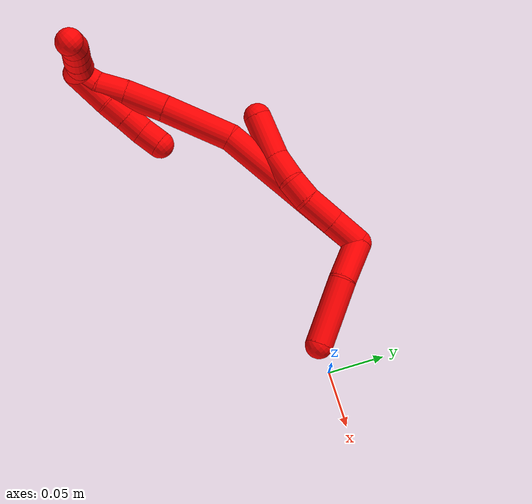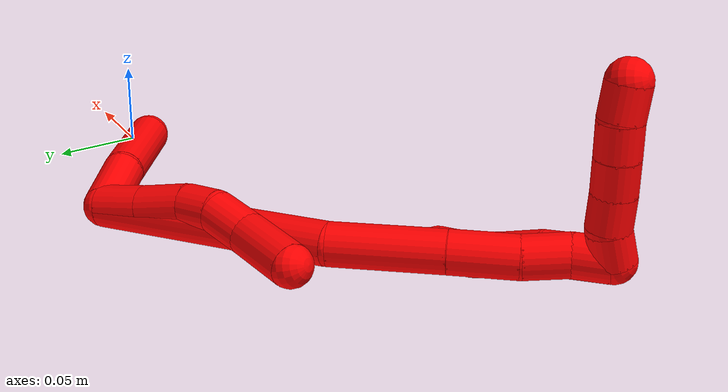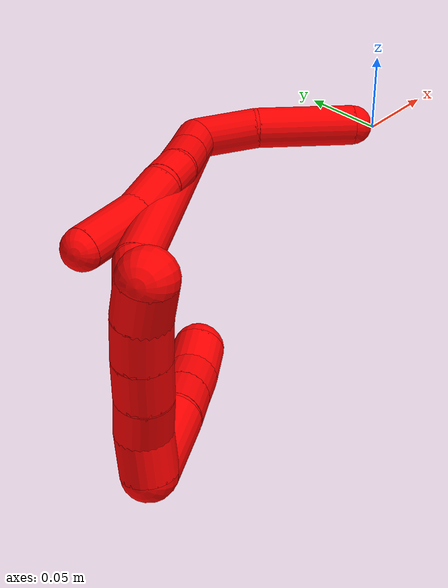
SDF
<sdf version="1.7">
 <world name="default">
  <model name="2">
   <static>0</static>
   <link name="2">
    <collision name="collision-cylinder-e_1_2_8">
     <pose>0.000711 -0.002378 0.01456 0.161924 0.048138 0.003907</pose>
     <geometry><cylinder><radius>0.0125</radius><length>0.029539</length></cylinder></geometry>
     <surface>
      <friction><ode><mu>1.16</mu><mu2>1.16</mu2><slip1>0</slip1><slip2>0</slip2></ode></friction>
      <contact><ode><kp>1e+06</kp><kd>1</kd><max_vel>0</max_vel><min_depth>0.001</min_depth></ode></contact>
     </surface>
    </collision>
    <visual name="visual-cylinder-e_1_2_8">
     <pose>0.000711 -0.002378 0.01456 0.161924 0.048138 0.003907</pose>
     <geometry><cylinder><radius>0.0125</radius><length>0.029539</length></cylinder></geometry>
     <material><ambient>1 0 0 1</ambient></material>
    </visual>
    <collision name="collision-cylinder-e_2_8_9">
     <pose>0.002696 -0.006528 0.044192 0.116995 0.083803 0.004911</pose>
     <geometry><cylinder><radius>0.0125</radius><length>0.03046</length></cylinder></geometry>
     <surface>
      <friction><ode><mu>1.16</mu><mu2>1.16</mu2><slip1>0</slip1><slip2>0</slip2></ode></friction>
      <contact><ode><kp>1e+06</kp><kd>1</kd><max_vel>0</max_vel><min_depth>0.001</min_depth></ode></contact>
     </surface>
    </collision>
    <visual name="visual-cylinder-e_2_8_9">
     <pose>0.002696 -0.006528 0.044192 0.116995 0.083803 0.004911</pose>
     <geometry><cylinder><radius>0.0125</radius><length>0.03046</length></cylinder></geometry>
     <material><ambient>1 0 0 1</ambient></material>
    </visual>
    <collision name="collision-cylinder-e_3_9_10">
     <pose>0.00231 -0.009905 0.069817 0.150943 -0.154341 -0.011694</pose>
     <geometry><cylinder><radius>0.0125</radius><length>0.021604</length></cylinder></geometry>
     <surface>
      <friction><ode><mu>1.16</mu><mu2>1.16</mu2><slip1>0</slip1><slip2>0</slip2></ode></friction>
      <contact><ode><kp>1e+06</kp><kd>1</kd><max_vel>0</max_vel><min_depth>0.001</min_depth></ode></contact>
     </surface>
    </collision>
    <visual name="visual-cylinder-e_3_9_10">
     <pose>0.00231 -0.009905 0.069817 0.150943 -0.154341 -0.011694</pose>
     <geometry><cylinder><radius>0.0125</radius><length>0.021604</length></cylinder></geometry>
     <material><ambient>1 0 0 1</ambient></material>
    </visual>
    <collision name="collision-cylinder-e_4_10_11">
     <pose>-0.004489 -0.01574 0.091919 0.351045 -0.395778 -0.071091</pose>
     <geometry><cylinder><radius>0.0125</radius><length>0.026662</length></cylinder></geometry>
     <surface>
      <friction><ode><mu>1.16</mu><mu2>1.16</mu2><slip1>0</slip1><slip2>0</slip2></ode></friction>
      <contact><ode><kp>1e+06</kp><kd>1</kd><max_vel>0</max_vel><min_depth>0.001</min_depth></ode></contact>
     </surface>
    </collision>
    <visual name="visual-cylinder-e_4_10_11">
     <pose>-0.004489 -0.01574 0.091919 0.351045 -0.395778 -0.071091</pose>
     <geometry><cylinder><radius>0.0125</radius><length>0.026662</length></cylinder></geometry>
     <material><ambient>1 0 0 1</ambient></material>
    </visual>
    <collision name="collision-cylinder-e_5_11_6">
     <pose>-0.019304 -0.022186 0.121825 0.120168 -0.482131 -0.029576</pose>
     <geometry><cylinder><radius>0.0125</radius><length>0.041735</length></cylinder></geometry>
     <surface>
      <friction><ode><mu>1.16</mu><mu2>1.16</mu2><slip1>0</slip1><slip2>0</slip2></ode></friction>
      <contact><ode><kp>1e+06</kp><kd>1</kd><max_vel>0</max_vel><min_depth>0.001</min_depth></ode></contact>
     </surface>
    </collision>
    <visual name="visual-cylinder-e_5_11_6">
     <pose>-0.019304 -0.022186 0.121825 0.120168 -0.482131 -0.029576</pose>
     <geometry><cylinder><radius>0.0125</radius><length>0.041735</length></cylinder></geometry>
     <material><ambient>1 0 0 1</ambient></material>
    </visual>
    <collision name="collision-cylinder-e_1_2_12">
     <pose>0.017743 -0.003513 -0.006407 2.64007 1.18012 2.41089</pose>
     <geometry><cylinder><radius>0.0125</radius><length>0.038377</length></cylinder></geometry>
     <surface>
      <friction><ode><mu>1.16</mu><mu2>1.16</mu2><slip1>0</slip1><slip2>0</slip2></ode></friction>
      <contact><ode><kp>1e+06</kp><kd>1</kd><max_vel>0</max_vel><min_depth>0.001</min_depth></ode></contact>
     </surface>
    </collision>
    <visual name="visual-cylinder-e_1_2_12">
     <pose>0.017743 -0.003513 -0.006407 2.64007 1.18012 2.41089</pose>
     <geometry><cylinder><radius>0.0125</radius><length>0.038377</length></cylinder></geometry>
     <material><ambient>1 0 0 1</ambient></material>
    </visual>
    <collision name="collision-cylinder-e_2_12_5">
     <pose>0.06149 -0.016966 -0.026018 2.49626 1.00468 2.0481</pose>
     <geometry><cylinder><radius>0.0125</radius><length>0.061623</length></cylinder></geometry>
     <surface>
      <friction><ode><mu>1.16</mu><mu2>1.16</mu2><slip1>0</slip1><slip2>0</slip2></ode></friction>
      <contact><ode><kp>1e+06</kp><kd>1</kd><max_vel>0</max_vel><min_depth>0.001</min_depth></ode></contact>
     </surface>
    </collision>
    <visual name="visual-cylinder-e_2_12_5">
     <pose>0.06149 -0.016966 -0.026018 2.49626 1.00468 2.0481</pose>
     <geometry><cylinder><radius>0.0125</radius><length>0.061623</length></cylinder></geometry>
     <material><ambient>1 0 0 1</ambient></material>
    </visual>
    <collision name="collision-cylinder-e_1_2_13">
     <pose>-0.001036 -0.019642 0.07153 0.268 -0.013961 -0.001882</pose>
     <geometry><cylinder><radius>0.0125</radius><length>0.14837</length></cylinder></geometry>
     <surface>
      <friction><ode><mu>1.16</mu><mu2>1.16</mu2><slip1>0</slip1><slip2>0</slip2></ode></friction>
      <contact><ode><kp>1e+06</kp><kd>1</kd><max_vel>0</max_vel><min_depth>0.001</min_depth></ode></contact>
     </surface>
    </collision>
    <visual name="visual-cylinder-e_1_2_13">
     <pose>-0.001036 -0.019642 0.07153 0.268 -0.013961 -0.001882</pose>
     <geometry><cylinder><radius>0.0125</radius><length>0.14837</length></cylinder></geometry>
     <material><ambient>1 0 0 1</ambient></material>
    </visual>
    <collision name="collision-cylinder-e_2_13_14">
     <pose>0.004941 -0.052328 0.171876 0.425032 0.218148 0.04725</pose>
     <geometry><cylinder><radius>0.0125</radius><length>0.064799</length></cylinder></geometry>
     <surface>
      <friction><ode><mu>1.16</mu><mu2>1.16</mu2><slip1>0</slip1><slip2>0</slip2></ode></friction>
      <contact><ode><kp>1e+06</kp><kd>1</kd><max_vel>0</max_vel><min_depth>0.001</min_depth></ode></contact>
     </surface>
    </collision>
    <visual name="visual-cylinder-e_2_13_14">
     <pose>0.004941 -0.052328 0.171876 0.425032 0.218148 0.04725</pose>
     <geometry><cylinder><radius>0.0125</radius><length>0.064799</length></cylinder></geometry>
     <material><ambient>1 0 0 1</ambient></material>
    </visual>
    <collision name="collision-cylinder-e_3_14_15">
     <pose>0.016403 -0.073729 0.217269 0.467026 0.235293 0.05621</pose>
     <geometry><cylinder><radius>0.0125</radius><length>0.038179</length></cylinder></geometry>
     <surface>
      <friction><ode><mu>1.16</mu><mu2>1.16</mu2><slip1>0</slip1><slip2>0</slip2></ode></friction>
      <contact><ode><kp>1e+06</kp><kd>1</kd><max_vel>0</max_vel><min_depth>0.001</min_depth></ode></contact>
     </surface>
    </collision>
    <visual name="visual-cylinder-e_3_14_15">
     <pose>0.016403 -0.073729 0.217269 0.467026 0.235293 0.05621</pose>
     <geometry><cylinder><radius>0.0125</radius><length>0.038179</length></cylinder></geometry>
     <material><ambient>1 0 0 1</ambient></material>
    </visual>
    <collision name="collision-cylinder-e_4_15_16">
     <pose>0.025746 -0.087526 0.245033 0.452438 0.37475 0.08722</pose>
     <geometry><cylinder><radius>0.0125</radius><length>0.026736</length></cylinder></geometry>
     <surface>
      <friction><ode><mu>1.16</mu><mu2>1.16</mu2><slip1>0</slip1><slip2>0</slip2></ode></friction>
      <contact><ode><kp>1e+06</kp><kd>1</kd><max_vel>0</max_vel><min_depth>0.001</min_depth></ode></contact>
     </surface>
    </collision>
    <visual name="visual-cylinder-e_4_15_16">
     <pose>0.025746 -0.087526 0.245033 0.452438 0.37475 0.08722</pose>
     <geometry><cylinder><radius>0.0125</radius><length>0.026736</length></cylinder></geometry>
     <material><ambient>1 0 0 1</ambient></material>
    </visual>
    <collision name="collision-cylinder-e_5_16_1">
     <pose>0.031752 -0.097155 0.266286 0.394592 0.101686 0.020343</pose>
     <geometry><cylinder><radius>0.0125</radius><length>0.021917</length></cylinder></geometry>
     <surface>
      <friction><ode><mu>1.16</mu><mu2>1.16</mu2><slip1>0</slip1><slip2>0</slip2></ode></friction>
      <contact><ode><kp>1e+06</kp><kd>1</kd><max_vel>0</max_vel><min_depth>0.001</min_depth></ode></contact>
     </surface>
    </collision>
    <visual name="visual-cylinder-e_5_16_1">
     <pose>0.031752 -0.097155 0.266286 0.394592 0.101686 0.020343</pose>
     <geometry><cylinder><radius>0.0125</radius><length>0.021917</length></cylinder></geometry>
     <material><ambient>1 0 0 1</ambient></material>
    </visual>
    <collision name="collision-cylinder-e_1_1_17">
     <pose>0.033328 -0.09763 0.257447 -2.94746 0.024081 -0.24608</pose>
     <geometry><cylinder><radius>0.0125</radius><length>0.038539</length></cylinder></geometry>
     <surface>
      <friction><ode><mu>1.16</mu><mu2>1.16</mu2><slip1>0</slip1><slip2>0</slip2></ode></friction>
      <contact><ode><kp>1e+06</kp><kd>1</kd><max_vel>0</max_vel><min_depth>0.001</min_depth></ode></contact>
     </surface>
    </collision>
    <visual name="visual-cylinder-e_1_1_17">
     <pose>0.033328 -0.09763 0.257447 -2.94746 0.024081 -0.24608</pose>
     <geometry><cylinder><radius>0.0125</radius><length>0.038539</length></cylinder></geometry>
     <material><ambient>1 0 0 1</ambient></material>
    </visual>
    <collision name="collision-cylinder-e_2_17_18">
     <pose>0.032583 -0.09288 0.228191 -3.04208 -0.115694 1.72121</pose>
     <geometry><cylinder><radius>0.0125</radius><length>0.020952</length></cylinder></geometry>
     <surface>
      <friction><ode><mu>1.16</mu><mu2>1.16</mu2><slip1>0</slip1><slip2>0</slip2></ode></friction>
      <contact><ode><kp>1e+06</kp><kd>1</kd><max_vel>0</max_vel><min_depth>0.001</min_depth></ode></contact>
     </surface>
    </collision>
    <visual name="visual-cylinder-e_2_17_18">
     <pose>0.032583 -0.09288 0.228191 -3.04208 -0.115694 1.72121</pose>
     <geometry><cylinder><radius>0.0125</radius><length>0.020952</length></cylinder></geometry>
     <material><ambient>1 0 0 1</ambient></material>
    </visual>
    <collision name="collision-cylinder-e_3_18_19">
     <pose>0.03051 -0.090777 0.207916 -3.03431 -0.086318 1.35476</pose>
     <geometry><cylinder><radius>0.0125</radius><length>0.020029</length></cylinder></geometry>
     <surface>
      <friction><ode><mu>1.16</mu><mu2>1.16</mu2><slip1>0</slip1><slip2>0</slip2></ode></friction>
      <contact><ode><kp>1e+06</kp><kd>1</kd><max_vel>0</max_vel><min_depth>0.001</min_depth></ode></contact>
     </surface>
    </collision>
    <visual name="visual-cylinder-e_3_18_19">
     <pose>0.03051 -0.090777 0.207916 -3.03431 -0.086318 1.35476</pose>
     <geometry><cylinder><radius>0.0125</radius><length>0.020029</length></cylinder></geometry>
     <material><ambient>1 0 0 1</ambient></material>
    </visual>
    <collision name="collision-cylinder-e_4_19_4">
     <pose>0.029657 -0.086249 0.188359 -2.79686 0.000933 -0.005358</pose>
     <geometry><cylinder><radius>0.0125</radius><length>0.02048</length></cylinder></geometry>
     <surface>
      <friction><ode><mu>1.16</mu><mu2>1.16</mu2><slip1>0</slip1><slip2>0</slip2></ode></friction>
      <contact><ode><kp>1e+06</kp><kd>1</kd><max_vel>0</max_vel><min_depth>0.001</min_depth></ode></contact>
     </surface>
    </collision>
    <visual name="visual-cylinder-e_4_19_4">
     <pose>0.029657 -0.086249 0.188359 -2.79686 0.000933 -0.005358</pose>
     <geometry><cylinder><radius>0.0125</radius><length>0.02048</length></cylinder></geometry>
     <material><ambient>1 0 0 1</ambient></material>
    </visual>
    <collision name="collision-cylinder-e_1_1_20">
     <pose>0.035888 -0.091911 0.277708 -1.42777 0.307158 -0.266614</pose>
     <geometry><cylinder><radius>0.0125</radius><length>0.02</length></cylinder></geometry>
     <surface>
      <friction><ode><mu>1.16</mu><mu2>1.16</mu2><slip1>0</slip1><slip2>0</slip2></ode></friction>
      <contact><ode><kp>1e+06</kp><kd>1</kd><max_vel>0</max_vel><min_depth>0.001</min_depth></ode></contact>
     </surface>
    </collision>
    <visual name="visual-cylinder-e_1_1_20">
     <pose>0.035888 -0.091911 0.277708 -1.42777 0.307158 -0.266614</pose>
     <geometry><cylinder><radius>0.0125</radius><length>0.02</length></cylinder></geometry>
     <material><ambient>1 0 0 1</ambient></material>
    </visual>
    <collision name="collision-cylinder-e_2_20_21">
     <pose>0.043718 -0.074408 0.282501 -1.16842 0.501418 -0.335481</pose>
     <geometry><cylinder><radius>0.0125</radius><length>0.02</length></cylinder></geometry>
     <surface>
      <friction><ode><mu>1.16</mu><mu2>1.16</mu2><slip1>0</slip1><slip2>0</slip2></ode></friction>
      <contact><ode><kp>1e+06</kp><kd>1</kd><max_vel>0</max_vel><min_depth>0.001</min_depth></ode></contact>
     </surface>
    </collision>
    <visual name="visual-cylinder-e_2_20_21">
     <pose>0.043718 -0.074408 0.282501 -1.16842 0.501418 -0.335481</pose>
     <geometry><cylinder><radius>0.0125</radius><length>0.02</length></cylinder></geometry>
     <material><ambient>1 0 0 1</ambient></material>
    </visual>
    <collision name="collision-cylinder-e_3_21_22">
     <pose>0.052752 -0.057845 0.289095 -1.21467 0.436393 -0.305778</pose>
     <geometry><cylinder><radius>0.0125</radius><length>0.02</length></cylinder></geometry>
     <surface>
      <friction><ode><mu>1.16</mu><mu2>1.16</mu2><slip1>0</slip1><slip2>0</slip2></ode></friction>
      <contact><ode><kp>1e+06</kp><kd>1</kd><max_vel>0</max_vel><min_depth>0.001</min_depth></ode></contact>
     </surface>
    </collision>
    <visual name="visual-cylinder-e_3_21_22">
     <pose>0.052752 -0.057845 0.289095 -1.21467 0.436393 -0.305778</pose>
     <geometry><cylinder><radius>0.0125</radius><length>0.02</length></cylinder></geometry>
     <material><ambient>1 0 0 1</ambient></material>
    </visual>
    <collision name="collision-cylinder-e_4_22_23">
     <pose>0.061554 -0.040957 0.295188 -1.23457 0.475291 -0.340539</pose>
     <geometry><cylinder><radius>0.0125</radius><length>0.02</length></cylinder></geometry>
     <surface>
      <friction><ode><mu>1.16</mu><mu2>1.16</mu2><slip1>0</slip1><slip2>0</slip2></ode></friction>
      <contact><ode><kp>1e+06</kp><kd>1</kd><max_vel>0</max_vel><min_depth>0.001</min_depth></ode></contact>
     </surface>
    </collision>
    <visual name="visual-cylinder-e_4_22_23">
     <pose>0.061554 -0.040957 0.295188 -1.23457 0.475291 -0.340539</pose>
     <geometry><cylinder><radius>0.0125</radius><length>0.02</length></cylinder></geometry>
     <material><ambient>1 0 0 1</ambient></material>
    </visual>
    <collision name="collision-cylinder-e_5_23_3">
     <pose>0.07182 -0.025151 0.301684 -1.12278 0.60524 -0.387758</pose>
     <geometry><cylinder><radius>0.0125</radius><length>0.02</length></cylinder></geometry>
     <surface>
      <friction><ode><mu>1.16</mu><mu2>1.16</mu2><slip1>0</slip1><slip2>0</slip2></ode></friction>
      <contact><ode><kp>1e+06</kp><kd>1</kd><max_vel>0</max_vel><min_depth>0.001</min_depth></ode></contact>
     </surface>
    </collision>
    <visual name="visual-cylinder-e_5_23_3">
     <pose>0.07182 -0.025151 0.301684 -1.12278 0.60524 -0.387758</pose>
     <geometry><cylinder><radius>0.0125</radius><length>0.02</length></cylinder></geometry>
     <material><ambient>1 0 0 1</ambient></material>
    </visual>
    <collision name="collision-sphere-3">
     <pose>0.077509 -0.017739 0.305246 0 -0 0</pose>
     <geometry><sphere><radius>0.0125</radius></sphere></geometry>
     <surface>
      <friction><ode><mu>1.16</mu><mu2>1.16</mu2><slip1>0</slip1><slip2>0</slip2></ode></friction>
      <contact><ode><kp>1e+06</kp><kd>1</kd><max_vel>0</max_vel><min_depth>0.001</min_depth></ode></contact>
     </surface>
    </collision>
    <visual name="visual-sphere-3">
     <pose>0.077509 -0.017739 0.305246 0 -0 0</pose>
     <geometry><sphere><radius>0.0125</radius></sphere></geometry>
     <material><ambient>1 0 0 1</ambient></material>
    </visual>
    <collision name="collision-sphere-23">
     <pose>0.06613 -0.032563 0.298122 0 -0 0</pose>
     <geometry><sphere><radius>0.0125</radius></sphere></geometry>
     <surface>
      <friction><ode><mu>1.16</mu><mu2>1.16</mu2><slip1>0</slip1><slip2>0</slip2></ode></friction>
      <contact><ode><kp>1e+06</kp><kd>1</kd><max_vel>0</max_vel><min_depth>0.001</min_depth></ode></contact>
     </surface>
    </collision>
    <visual name="visual-sphere-23">
     <pose>0.06613 -0.032563 0.298122 0 -0 0</pose>
     <geometry><sphere><radius>0.0125</radius></sphere></geometry>
     <material><ambient>1 0 0 1</ambient></material>
    </visual>
    <collision name="collision-sphere-22">
     <pose>0.056978 -0.049351 0.292254 0 -0 0</pose>
     <geometry><sphere><radius>0.0125</radius></sphere></geometry>
     <surface>
      <friction><ode><mu>1.16</mu><mu2>1.16</mu2><slip1>0</slip1><slip2>0</slip2></ode></friction>
      <contact><ode><kp>1e+06</kp><kd>1</kd><max_vel>0</max_vel><min_depth>0.001</min_depth></ode></contact>
     </surface>
    </collision>
    <visual name="visual-sphere-22">
     <pose>0.056978 -0.049351 0.292254 0 -0 0</pose>
     <geometry><sphere><radius>0.0125</radius></sphere></geometry>
     <material><ambient>1 0 0 1</ambient></material>
    </visual>
    <collision name="collision-sphere-21">
     <pose>0.048525 -0.066339 0.285935 0 -0 0</pose>
     <geometry><sphere><radius>0.0125</radius></sphere></geometry>
     <surface>
      <friction><ode><mu>1.16</mu><mu2>1.16</mu2><slip1>0</slip1><slip2>0</slip2></ode></friction>
      <contact><ode><kp>1e+06</kp><kd>1</kd><max_vel>0</max_vel><min_depth>0.001</min_depth></ode></contact>
     </surface>
    </collision>
    <visual name="visual-sphere-21">
     <pose>0.048525 -0.066339 0.285935 0 -0 0</pose>
     <geometry><sphere><radius>0.0125</radius></sphere></geometry>
     <material><ambient>1 0 0 1</ambient></material>
    </visual>
    <collision name="collision-sphere-20">
     <pose>0.038911 -0.082477 0.279067 0 -0 0</pose>
     <geometry><sphere><radius>0.0125</radius></sphere></geometry>
     <surface>
      <friction><ode><mu>1.16</mu><mu2>1.16</mu2><slip1>0</slip1><slip2>0</slip2></ode></friction>
      <contact><ode><kp>1e+06</kp><kd>1</kd><max_vel>0</max_vel><min_depth>0.001</min_depth></ode></contact>
     </surface>
    </collision>
    <visual name="visual-sphere-20">
     <pose>0.038911 -0.082477 0.279067 0 -0 0</pose>
     <geometry><sphere><radius>0.0125</radius></sphere></geometry>
     <material><ambient>1 0 0 1</ambient></material>
    </visual>
    <collision name="collision-sphere-4">
     <pose>0.029666 -0.082788 0.178722 0 -0 0</pose>
     <geometry><sphere><radius>0.0125</radius></sphere></geometry>
     <surface>
      <friction><ode><mu>1.16</mu><mu2>1.16</mu2><slip1>0</slip1><slip2>0</slip2></ode></friction>
      <contact><ode><kp>1e+06</kp><kd>1</kd><max_vel>0</max_vel><min_depth>0.001</min_depth></ode></contact>
     </surface>
    </collision>
    <visual name="visual-sphere-4">
     <pose>0.029666 -0.082788 0.178722 0 -0 0</pose>
     <geometry><sphere><radius>0.0125</radius></sphere></geometry>
     <material><ambient>1 0 0 1</ambient></material>
    </visual>
    <collision name="collision-sphere-6">
     <pose>-0.02898 -0.024402 0.14018 0 -0 0</pose>
     <geometry><sphere><radius>0.0125</radius></sphere></geometry>
     <surface>
      <friction><ode><mu>1.16</mu><mu2>1.16</mu2><slip1>0</slip1><slip2>0</slip2></ode></friction>
      <contact><ode><kp>1e+06</kp><kd>1</kd><max_vel>0</max_vel><min_depth>0.001</min_depth></ode></contact>
     </surface>
    </collision>
    <visual name="visual-sphere-6">
     <pose>-0.02898 -0.024402 0.14018 0 -0 0</pose>
     <geometry><sphere><radius>0.0125</radius></sphere></geometry>
     <material><ambient>1 0 0 1</ambient></material>
    </visual>
    <collision name="collision-sphere-11">
     <pose>-0.009629 -0.019969 0.10347 0 -0 0</pose>
     <geometry><sphere><radius>0.0125</radius></sphere></geometry>
     <surface>
      <friction><ode><mu>1.16</mu><mu2>1.16</mu2><slip1>0</slip1><slip2>0</slip2></ode></friction>
      <contact><ode><kp>1e+06</kp><kd>1</kd><max_vel>0</max_vel><min_depth>0.001</min_depth></ode></contact>
     </surface>
    </collision>
    <visual name="visual-sphere-11">
     <pose>-0.009629 -0.019969 0.10347 0 -0 0</pose>
     <geometry><sphere><radius>0.0125</radius></sphere></geometry>
     <material><ambient>1 0 0 1</ambient></material>
    </visual>
    <collision name="collision-sphere-10">
     <pose>0.00065 -0.01151 0.080369 0 -0 0</pose>
     <geometry><sphere><radius>0.0125</radius></sphere></geometry>
     <surface>
      <friction><ode><mu>1.16</mu><mu2>1.16</mu2><slip1>0</slip1><slip2>0</slip2></ode></friction>
      <contact><ode><kp>1e+06</kp><kd>1</kd><max_vel>0</max_vel><min_depth>0.001</min_depth></ode></contact>
     </surface>
    </collision>
    <visual name="visual-sphere-10">
     <pose>0.00065 -0.01151 0.080369 0 -0 0</pose>
     <geometry><sphere><radius>0.0125</radius></sphere></geometry>
     <material><ambient>1 0 0 1</ambient></material>
    </visual>
    <collision name="collision-sphere-9">
     <pose>0.003971 -0.0083 0.059265 0 -0 0</pose>
     <geometry><sphere><radius>0.0125</radius></sphere></geometry>
     <surface>
      <friction><ode><mu>1.16</mu><mu2>1.16</mu2><slip1>0</slip1><slip2>0</slip2></ode></friction>
      <contact><ode><kp>1e+06</kp><kd>1</kd><max_vel>0</max_vel><min_depth>0.001</min_depth></ode></contact>
     </surface>
    </collision>
    <visual name="visual-sphere-9">
     <pose>0.003971 -0.0083 0.059265 0 -0 0</pose>
     <geometry><sphere><radius>0.0125</radius></sphere></geometry>
     <material><ambient>1 0 0 1</ambient></material>
    </visual>
    <collision name="collision-sphere-2">
     <geometry><sphere><radius>0.0125</radius></sphere></geometry>
     <surface>
      <friction><ode><mu>1.16</mu><mu2>1.16</mu2><slip1>0</slip1><slip2>0</slip2></ode></friction>
      <contact><ode><kp>1e+06</kp><kd>1</kd><max_vel>0</max_vel><min_depth>0.001</min_depth></ode></contact>
     </surface>
    </collision>
    <visual name="visual-sphere-2">
     <geometry><sphere><radius>0.0125</radius></sphere></geometry>
     <material><ambient>1 0 0 1</ambient></material>
    </visual>
    <collision name="collision-sphere-19">
     <pose>0.029647 -0.089709 0.197997 0 -0 0</pose>
     <geometry><sphere><radius>0.0125</radius></sphere></geometry>
     <surface>
      <friction><ode><mu>1.16</mu><mu2>1.16</mu2><slip1>0</slip1><slip2>0</slip2></ode></friction>
      <contact><ode><kp>1e+06</kp><kd>1</kd><max_vel>0</max_vel><min_depth>0.001</min_depth></ode></contact>
     </surface>
    </collision>
    <visual name="visual-sphere-19">
     <pose>0.029647 -0.089709 0.197997 0 -0 0</pose>
     <geometry><sphere><radius>0.0125</radius></sphere></geometry>
     <material><ambient>1 0 0 1</ambient></material>
    </visual>
    <collision name="collision-sphere-8">
     <pose>0.001421 -0.004757 0.029119 0 -0 0</pose>
     <geometry><sphere><radius>0.0125</radius></sphere></geometry>
     <surface>
      <friction><ode><mu>1.16</mu><mu2>1.16</mu2><slip1>0</slip1><slip2>0</slip2></ode></friction>
      <contact><ode><kp>1e+06</kp><kd>1</kd><max_vel>0</max_vel><min_depth>0.001</min_depth></ode></contact>
     </surface>
    </collision>
    <visual name="visual-sphere-8">
     <pose>0.001421 -0.004757 0.029119 0 -0 0</pose>
     <geometry><sphere><radius>0.0125</radius></sphere></geometry>
     <material><ambient>1 0 0 1</ambient></material>
    </visual>
    <collision name="collision-sphere-12">
     <pose>0.035485 -0.007026 -0.012815 0 -0 0</pose>
     <geometry><sphere><radius>0.0125</radius></sphere></geometry>
     <surface>
      <friction><ode><mu>1.16</mu><mu2>1.16</mu2><slip1>0</slip1><slip2>0</slip2></ode></friction>
      <contact><ode><kp>1e+06</kp><kd>1</kd><max_vel>0</max_vel><min_depth>0.001</min_depth></ode></contact>
     </surface>
    </collision>
    <visual name="visual-sphere-12">
     <pose>0.035485 -0.007026 -0.012815 0 -0 0</pose>
     <geometry><sphere><radius>0.0125</radius></sphere></geometry>
     <material><ambient>1 0 0 1</ambient></material>
    </visual>
    <collision name="collision-sphere-5">
     <pose>0.087494 -0.026906 -0.03922 0 -0 0</pose>
     <geometry><sphere><radius>0.0125</radius></sphere></geometry>
     <surface>
      <friction><ode><mu>1.16</mu><mu2>1.16</mu2><slip1>0</slip1><slip2>0</slip2></ode></friction>
      <contact><ode><kp>1e+06</kp><kd>1</kd><max_vel>0</max_vel><min_depth>0.001</min_depth></ode></contact>
     </surface>
    </collision>
    <visual name="visual-sphere-5">
     <pose>0.087494 -0.026906 -0.03922 0 -0 0</pose>
     <geometry><sphere><radius>0.0125</radius></sphere></geometry>
     <material><ambient>1 0 0 1</ambient></material>
    </visual>
    <collision name="collision-sphere-13">
     <pose>-0.002071 -0.039285 0.143059 0 -0 0</pose>
     <geometry><sphere><radius>0.0125</radius></sphere></geometry>
     <surface>
      <friction><ode><mu>1.16</mu><mu2>1.16</mu2><slip1>0</slip1><slip2>0</slip2></ode></friction>
      <contact><ode><kp>1e+06</kp><kd>1</kd><max_vel>0</max_vel><min_depth>0.001</min_depth></ode></contact>
     </surface>
    </collision>
    <visual name="visual-sphere-13">
     <pose>-0.002071 -0.039285 0.143059 0 -0 0</pose>
     <geometry><sphere><radius>0.0125</radius></sphere></geometry>
     <material><ambient>1 0 0 1</ambient></material>
    </visual>
    <collision name="collision-sphere-14">
     <pose>0.011953 -0.065371 0.200693 0 -0 0</pose>
     <geometry><sphere><radius>0.0125</radius></sphere></geometry>
     <surface>
      <friction><ode><mu>1.16</mu><mu2>1.16</mu2><slip1>0</slip1><slip2>0</slip2></ode></friction>
      <contact><ode><kp>1e+06</kp><kd>1</kd><max_vel>0</max_vel><min_depth>0.001</min_depth></ode></contact>
     </surface>
    </collision>
    <visual name="visual-sphere-14">
     <pose>0.011953 -0.065371 0.200693 0 -0 0</pose>
     <geometry><sphere><radius>0.0125</radius></sphere></geometry>
     <material><ambient>1 0 0 1</ambient></material>
    </visual>
    <collision name="collision-sphere-15">
     <pose>0.020853 -0.082087 0.233845 0 -0 0</pose>
     <geometry><sphere><radius>0.0125</radius></sphere></geometry>
     <surface>
      <friction><ode><mu>1.16</mu><mu2>1.16</mu2><slip1>0</slip1><slip2>0</slip2></ode></friction>
      <contact><ode><kp>1e+06</kp><kd>1</kd><max_vel>0</max_vel><min_depth>0.001</min_depth></ode></contact>
     </surface>
    </collision>
    <visual name="visual-sphere-15">
     <pose>0.020853 -0.082087 0.233845 0 -0 0</pose>
     <geometry><sphere><radius>0.0125</radius></sphere></geometry>
     <material><ambient>1 0 0 1</ambient></material>
    </visual>
    <collision name="collision-sphere-16">
     <pose>0.03064 -0.092964 0.256222 0 -0 0</pose>
     <geometry><sphere><radius>0.0125</radius></sphere></geometry>
     <surface>
      <friction><ode><mu>1.16</mu><mu2>1.16</mu2><slip1>0</slip1><slip2>0</slip2></ode></friction>
      <contact><ode><kp>1e+06</kp><kd>1</kd><max_vel>0</max_vel><min_depth>0.001</min_depth></ode></contact>
     </surface>
    </collision>
    <visual name="visual-sphere-16">
     <pose>0.03064 -0.092964 0.256222 0 -0 0</pose>
     <geometry><sphere><radius>0.0125</radius></sphere></geometry>
     <material><ambient>1 0 0 1</ambient></material>
    </visual>
    <collision name="collision-sphere-1">
     <pose>0.032864 -0.101346 0.27635 0 -0 0</pose>
     <geometry><sphere><radius>0.0125</radius></sphere></geometry>
     <surface>
      <friction><ode><mu>1.16</mu><mu2>1.16</mu2><slip1>0</slip1><slip2>0</slip2></ode></friction>
      <contact><ode><kp>1e+06</kp><kd>1</kd><max_vel>0</max_vel><min_depth>0.001</min_depth></ode></contact>
     </surface>
    </collision>
    <visual name="visual-sphere-1">
     <pose>0.032864 -0.101346 0.27635 0 -0 0</pose>
     <geometry><sphere><radius>0.0125</radius></sphere></geometry>
     <material><ambient>1 0 0 1</ambient></material>
    </visual>
    <collision name="collision-sphere-18">
     <pose>0.031374 -0.091846 0.217836 0 -0 0</pose>
     <geometry><sphere><radius>0.0125</radius></sphere></geometry>
     <surface>
      <friction><ode><mu>1.16</mu><mu2>1.16</mu2><slip1>0</slip1><slip2>0</slip2></ode></friction>
      <contact><ode><kp>1e+06</kp><kd>1</kd><max_vel>0</max_vel><min_depth>0.001</min_depth></ode></contact>
     </surface>
    </collision>
    <visual name="visual-sphere-18">
     <pose>0.031374 -0.091846 0.217836 0 -0 0</pose>
     <geometry><sphere><radius>0.0125</radius></sphere></geometry>
     <material><ambient>1 0 0 1</ambient></material>
    </visual>
    <collision name="collision-sphere-17">
     <pose>0.033792 -0.093913 0.238545 0 -0 0</pose>
     <geometry><sphere><radius>0.0125</radius></sphere></geometry>
     <surface>
      <friction><ode><mu>1.16</mu><mu2>1.16</mu2><slip1>0</slip1><slip2>0</slip2></ode></friction>
      <contact><ode><kp>1e+06</kp><kd>1</kd><max_vel>0</max_vel><min_depth>0.001</min_depth></ode></contact>
     </surface>
    </collision>
    <visual name="visual-sphere-17">
     <pose>0.033792 -0.093913 0.238545 0 -0 0</pose>
     <geometry><sphere><radius>0.0125</radius></sphere></geometry>
     <material><ambient>1 0 0 1</ambient></material>
    </visual>
    <inertial>
     <pose>0.019167 -0.042263 0.137402 0 -0 0</pose>
     <mass>0.75</mass>
     <inertia><ixx>0.00036</ixx><ixy>0</ixy><ixz>0</ixz><iyy>0.000347</iyy><iyz>0</iyz><izz>8.8e-05</izz></inertia>
    </inertial>
   </link>
   <pose>-0.102876 0.059352 0.0115 1.2015 -0.433218 -0.937021</pose>
  </model>
 </world>
</sdf>
